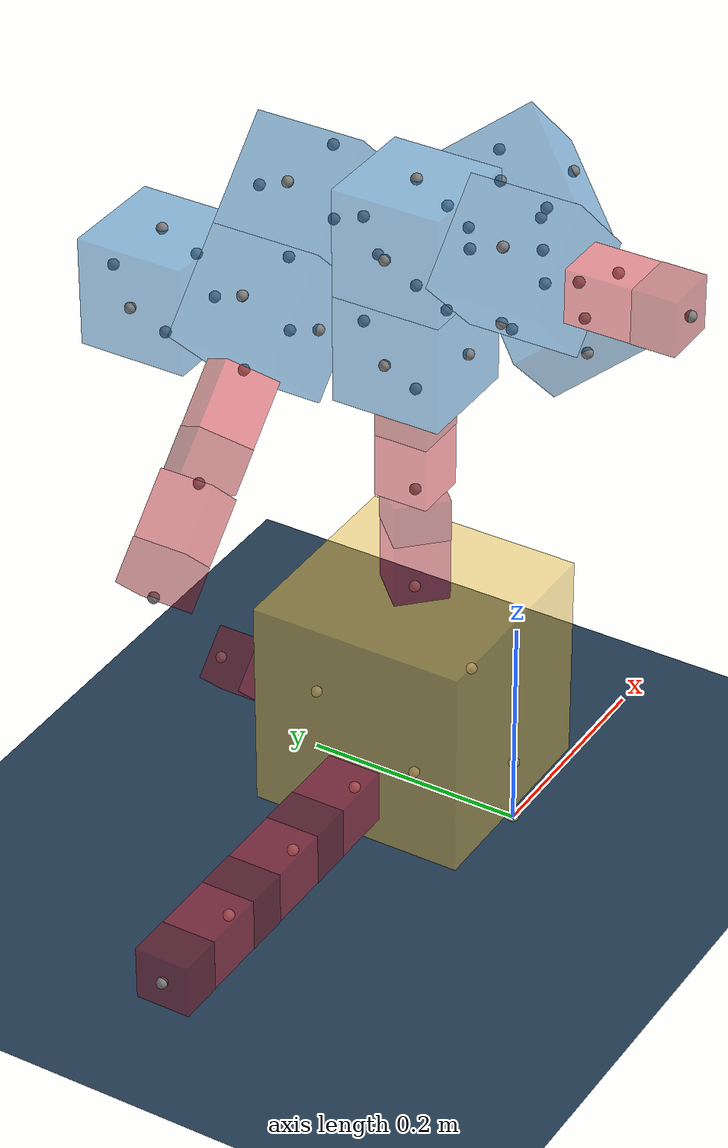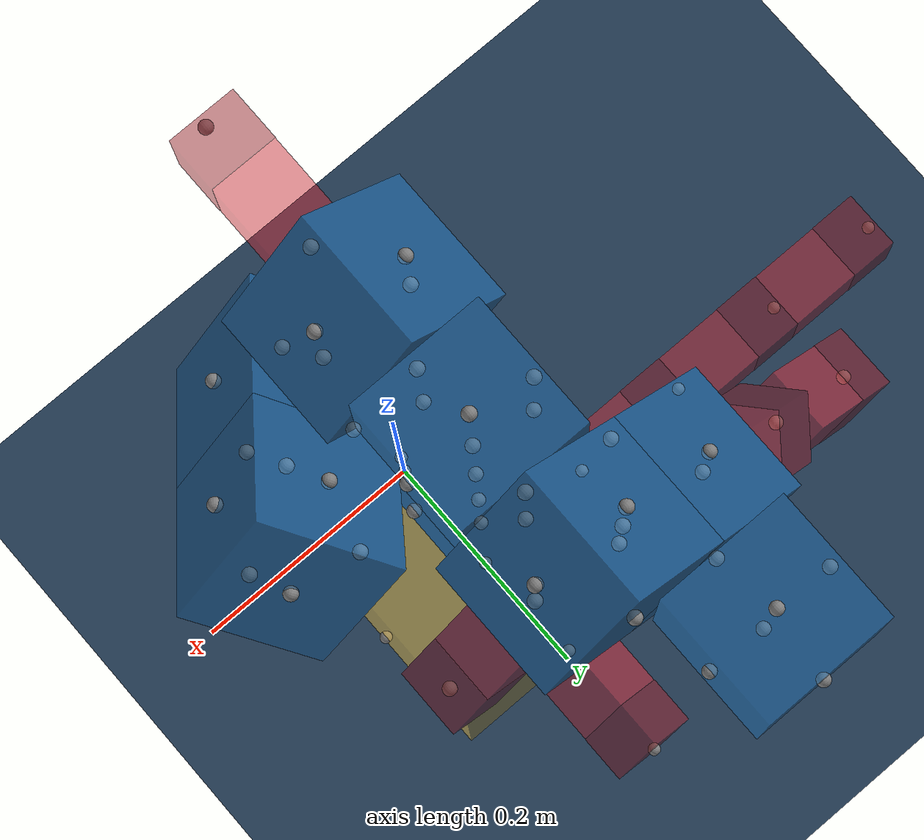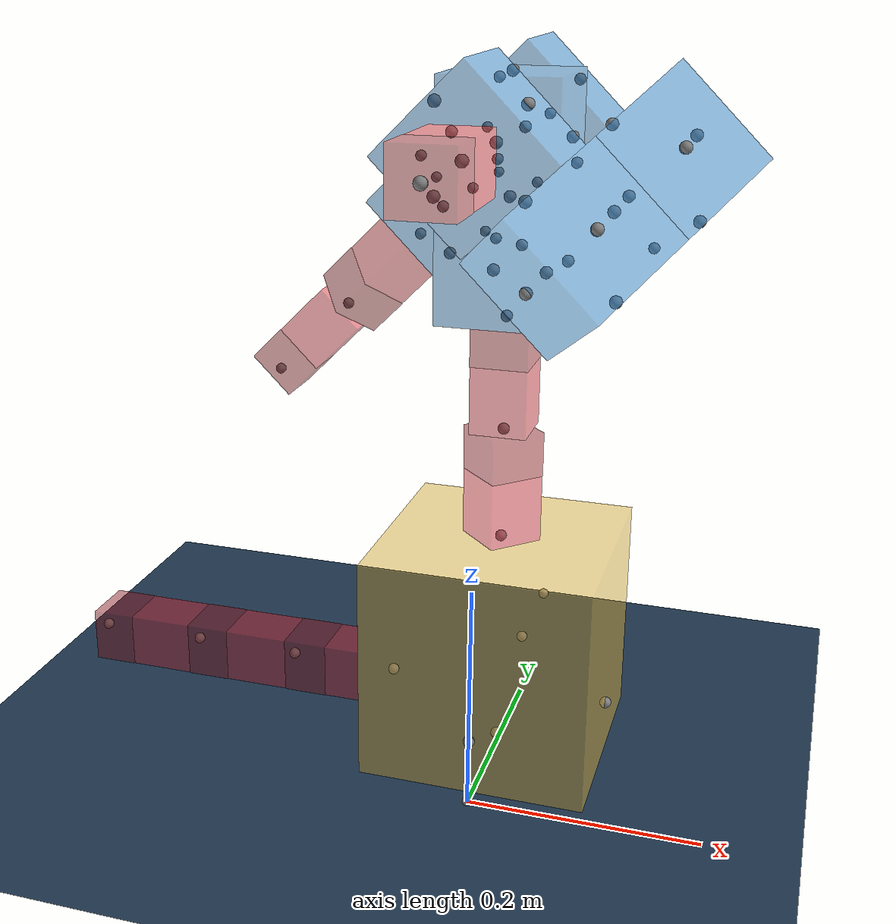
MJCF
<mujoco model="Simple Flat World">
  <compiler angle="radian"/>

  <option integrator="implicitfast"/>

  <visual>
    <global offwidth="1280" offheight="960"/>
  </visual>

  <default>
    <default class="robot1-main">
      <default class="robot1-0-2-3-main">
        <default class="robot1-0-2-3-2-25-0-main"/>
        <default class="robot1-0-2-3-25-10-0-main"/>
      </default>
      <default class="robot1-0-19-0-main"/>
      <default class="robot1-0-18-4-main"/>
      <default class="robot1-18-15-0-main"/>
      <default class="robot1-15-3-0-main"/>
      <default class="robot1-3-7-0-main"/>
      <default class="robot1-7-21-3-main"/>
      <default class="robot1-7-22-2-main"/>
      <default class="robot1-21-26-5-main"/>
      <default class="robot1-21-13-0-main"/>
      <default class="robot1-22-4-5-main"/>
      <default class="robot1-22-24-2-main"/>
      <default class="robot1-26-14-4-main"/>
      <default class="robot1-4-11-3-main"/>
      <default class="robot1-4-23-0-main"/>
      <default class="robot1-23-1-0-main"/>
    </default>
  </default>

  <asset>
    <texture type="2d" colorspace="auto" name="floor" builtin="checker" rgb1="0.1 0.2 0.3" rgb2="0.2 0.3 0.4" width="600" height="600"/>
    <material name="floor" texture="floor" texuniform="true" texrepeat="3 3"/>
  </asset>

  <worldbody>
    <site pos="0 0 0"/>
    <camera name="ortho-cam" pos="-5 0 5" quat="0.653281 0.270598 -0.270598 -0.653281" orthographic="true" fovy="5"/>
    <light name="light" pos="0 0 1" dir="0 0 -1" type="directional" castshadow="false"/>
    <body name="floor">
      <geom name="floor" size="5 5 0.5" type="plane" material="floor"/>
    </body>
    <body name="robot1-world" pos="0 0 0.11">
      <joint type="free"/>
      <body name="robot1-core">
        <geom name="robot1-core" size="0.1 0.1 0.1" pos="0 0.1 0" type="box" mass="1" rgba="0.992157 0.792157 0.25098 0.5"/>
        <site name="robot1-core-front" pos="0 0.2 -0.05"/>
        <site name="robot1-core-back" pos="0 0 -0.05" quat="0 0 0 1"/>
        <site name="robot1-core-left" pos="-0.1 0.1 -0.05" quat="0.707107 0 0 0.707107"/>
        <site name="robot1-core-right" pos="0.1 0.1 -0.05" quat="-0.707107 0 0 0.707107"/>
        <site name="robot1-core-top" pos="0 0.1 0.1" quat="0.707107 0.707107 0 0"/>
        <site name="robot1-core-bottom" pos="0 0.1 -0.1" quat="0 0 -0.707107 0.707107"/>
        <body name="robot1-0-2-3-hinge" pos="-0.1 0.1 -0.05" quat="-0.5 -0.5 0.5 -0.5">
          <body name="robot1-0-2-3-stator" pos="0 0.03 0">
            <geom name="robot1-0-2-3-stator" size="0.02475 0.0297 0.02475" type="box" mass="0.02" rgba="0.87451 0.160784 0.207843 0.5"/>
          </body>
          <body name="robot1-0-2-3-rotor" pos="0 0.08 0">
            <joint name="robot1-0-2-3-servo" pos="0 -0.02 0" axis="0 0 1"/>
            <geom name="robot1-0-2-3-rotor" size="0.025 0.02 0.025" type="box" mass="0.04" rgba="0.627451 0.0941176 0.129412 0.5"/>
            <site name="robot1-0-2-3-hinge-front" pos="0 0.02 0"/>
            <body name="robot1-0-2-3-2-25-0-hinge" pos="0 0.02 0">
              <body name="robot1-0-2-3-2-25-0-stator" pos="0 0.03 0">
                <geom name="robot1-0-2-3-2-25-0-stator" size="0.02475 0.0297 0.02475" type="box" mass="0.02" rgba="0.87451 0.160784 0.207843 0.5"/>
              </body>
              <body name="robot1-0-2-3-2-25-0-rotor" pos="0 0.08 0">
                <joint name="robot1-0-2-3-2-25-0-servo" pos="0 -0.02 0" axis="0 0 1"/>
                <geom name="robot1-0-2-3-2-25-0-rotor" size="0.025 0.02 0.025" type="box" mass="0.04" rgba="0.627451 0.0941176 0.129412 0.5"/>
                <site name="robot1-0-2-3-2-25-0-hinge-front" pos="0 0.02 0"/>
                <body name="robot1-0-2-3-25-10-0-hinge" pos="0 0.02 0">
                  <body name="robot1-0-2-3-25-10-0-stator" pos="0 0.03 0">
                    <geom name="robot1-0-2-3-25-10-0-stator" size="0.02475 0.0297 0.02475" type="box" mass="0.02" rgba="0.87451 0.160784 0.207843 0.5"/>
                  </body>
                  <body name="robot1-0-2-3-25-10-0-rotor" pos="0 0.08 0">
                    <joint name="robot1-0-2-3-25-10-0-servo" pos="0 -0.02 0" axis="0 0 1"/>
                    <geom name="robot1-0-2-3-25-10-0-rotor" size="0.025 0.02 0.025" type="box" mass="0.04" rgba="0.627451 0.0941176 0.129412 0.5"/>
                    <site name="robot1-0-2-3-25-10-0-hinge-front" pos="0 0.02 0"/>
                  </body>
                </body>
              </body>
            </body>
          </body>
        </body>
        <body name="robot1-0-19-0-hinge" pos="0 0.2 -0.05" quat="0.382911 0 0.923785 0">
          <body name="robot1-0-19-0-stator" pos="0 0.03 0">
            <geom name="robot1-0-19-0-stator" size="0.02475 0.0297 0.02475" type="box" mass="0.02" rgba="0.87451 0.160784 0.207843 0.5"/>
          </body>
          <body name="robot1-0-19-0-rotor" pos="0 0.08 0">
            <joint name="robot1-0-19-0-servo" pos="0 -0.02 0" axis="0 0 1"/>
            <geom name="robot1-0-19-0-rotor" size="0.025 0.02 0.025" type="box" mass="0.04" rgba="0.627451 0.0941176 0.129412 0.5"/>
            <site name="robot1-0-19-0-hinge-front" pos="0 0.02 0"/>
          </body>
        </body>
        <body name="robot1-0-18-4-hinge" pos="0 0.1 0.1" quat="0.653215 0.653215 0.270759 0.270759">
          <body name="robot1-0-18-4-stator" pos="0 0.03 0">
            <geom name="robot1-0-18-4-stator" size="0.02475 0.0297 0.02475" type="box" mass="0.02" rgba="0.87451 0.160784 0.207843 0.5"/>
          </body>
          <body name="robot1-0-18-4-rotor" pos="0 0.08 0">
            <joint name="robot1-0-18-4-servo" pos="0 -0.02 0" axis="0 0 1"/>
            <geom name="robot1-0-18-4-rotor" size="0.025 0.02 0.025" type="box" mass="0.04" rgba="0.627451 0.0941176 0.129412 0.5"/>
            <site name="robot1-0-18-4-hinge-front" pos="0 0.02 0"/>
            <body name="robot1-18-15-0-hinge" pos="0 0.02 0" quat="0.923785 0 0.382911 0">
              <body name="robot1-18-15-0-stator" pos="0 0.03 0">
                <geom name="robot1-18-15-0-stator" size="0.02475 0.0297 0.02475" type="box" mass="0.02" rgba="0.87451 0.160784 0.207843 0.5"/>
              </body>
              <body name="robot1-18-15-0-rotor" pos="0 0.08 0">
                <joint name="robot1-18-15-0-servo" pos="0 -0.02 0" axis="0 0 1"/>
                <geom name="robot1-18-15-0-rotor" size="0.025 0.02 0.025" type="box" mass="0.04" rgba="0.627451 0.0941176 0.129412 0.5"/>
                <site name="robot1-18-15-0-hinge-front" pos="0 0.02 0"/>
                <body name="robot1-15-3-0-brick" pos="0 0.02 0">
                  <geom name="robot1-15-3-0-brick" size="0.05 0.05 0.05" pos="0 0.05 0" type="box" mass="0.055" rgba="0.109804 0.466667 0.764706 0.5"/>
                  <site name="robot1-15-3-0-brick-front" pos="0 0.1 0"/>
                  <site name="robot1-15-3-0-brick-left" pos="-0.05 0.05 0" quat="0.707107 0 0 0.707107"/>
                  <site name="robot1-15-3-0-brick-right" pos="0.05 0.05 0" quat="-0.707107 0 0 0.707107"/>
                  <site name="robot1-15-3-0-brick-top" pos="0 0.05 0.05" quat="0.707107 0.707107 0 0"/>
                  <site name="robot1-15-3-0-brick-bottom" pos="0 0.05 -0.05" quat="0 0 -0.707107 0.707107"/>
                  <body name="robot1-3-7-0-brick" pos="0 0.1 0">
                    <geom name="robot1-3-7-0-brick" size="0.05 0.05 0.05" pos="0 0.05 0" type="box" mass="0.055" rgba="0.109804 0.466667 0.764706 0.5"/>
                    <site name="robot1-3-7-0-brick-front" pos="0 0.1 0"/>
                    <site name="robot1-3-7-0-brick-left" pos="-0.05 0.05 0" quat="0.707107 0 0 0.707107"/>
                    <site name="robot1-3-7-0-brick-right" pos="0.05 0.05 0" quat="-0.707107 0 0 0.707107"/>
                    <site name="robot1-3-7-0-brick-top" pos="0 0.05 0.05" quat="0.707107 0.707107 0 0"/>
                    <site name="robot1-3-7-0-brick-bottom" pos="0 0.05 -0.05" quat="0 0 -0.707107 0.707107"/>
                    <body name="robot1-7-21-3-brick" pos="-0.05 0.05 0" quat="0.270759 -0.653215 0.653215 0.270759">
                      <geom name="robot1-7-21-3-brick" size="0.05 0.05 0.05" pos="0 0.05 0" type="box" mass="0.055" rgba="0.109804 0.466667 0.764706 0.5"/>
                      <site name="robot1-7-21-3-brick-front" pos="0 0.1 0"/>
                      <site name="robot1-7-21-3-brick-left" pos="-0.05 0.05 0" quat="0.707107 0 0 0.707107"/>
                      <site name="robot1-7-21-3-brick-right" pos="0.05 0.05 0" quat="-0.707107 0 0 0.707107"/>
                      <site name="robot1-7-21-3-brick-top" pos="0 0.05 0.05" quat="0.707107 0.707107 0 0"/>
                      <site name="robot1-7-21-3-brick-bottom" pos="0 0.05 -0.05" quat="0 0 -0.707107 0.707107"/>
                      <body name="robot1-21-26-5-brick" pos="0 0.05 -0.05" quat="0.270759 -0.270759 -0.653215 0.653215">
                        <geom name="robot1-21-26-5-brick" size="0.05 0.05 0.05" pos="0 0.05 0" type="box" mass="0.055" rgba="0.109804 0.466667 0.764706 0.5"/>
                        <site name="robot1-21-26-5-brick-front" pos="0 0.1 0"/>
                        <site name="robot1-21-26-5-brick-left" pos="-0.05 0.05 0" quat="0.707107 0 0 0.707107"/>
                        <site name="robot1-21-26-5-brick-right" pos="0.05 0.05 0" quat="-0.707107 0 0 0.707107"/>
                        <site name="robot1-21-26-5-brick-top" pos="0 0.05 0.05" quat="0.707107 0.707107 0 0"/>
                        <site name="robot1-21-26-5-brick-bottom" pos="0 0.05 -0.05" quat="0 0 -0.707107 0.707107"/>
                        <body name="robot1-26-14-4-brick" pos="0 0.05 0.05" quat="0.5 0.5 0.5 0.5">
                          <geom name="robot1-26-14-4-brick" size="0.05 0.05 0.05" pos="0 0.05 0" type="box" mass="0.055" rgba="0.109804 0.466667 0.764706 0.5"/>
                          <site name="robot1-26-14-4-brick-front" pos="0 0.1 0"/>
                          <site name="robot1-26-14-4-brick-left" pos="-0.05 0.05 0" quat="0.707107 0 0 0.707107"/>
                          <site name="robot1-26-14-4-brick-right" pos="0.05 0.05 0" quat="-0.707107 0 0 0.707107"/>
                          <site name="robot1-26-14-4-brick-top" pos="0 0.05 0.05" quat="0.707107 0.707107 0 0"/>
                          <site name="robot1-26-14-4-brick-bottom" pos="0 0.05 -0.05" quat="0 0 -0.707107 0.707107"/>
                        </body>
                      </body>
                      <body name="robot1-21-13-0-hinge" pos="0 0.1 0" quat="0.923785 0 0.382911 0">
                        <body name="robot1-21-13-0-stator" pos="0 0.03 0">
                          <geom name="robot1-21-13-0-stator" size="0.02475 0.0297 0.02475" type="box" mass="0.02" rgba="0.87451 0.160784 0.207843 0.5"/>
                        </body>
                        <body name="robot1-21-13-0-rotor" pos="0 0.08 0">
                          <joint name="robot1-21-13-0-servo" pos="0 -0.02 0" axis="0 0 1"/>
                          <geom name="robot1-21-13-0-rotor" size="0.025 0.02 0.025" type="box" mass="0.04" rgba="0.627451 0.0941176 0.129412 0.5"/>
                          <site name="robot1-21-13-0-hinge-front" pos="0 0.02 0"/>
                        </body>
                      </body>
                    </body>
                    <body name="robot1-7-22-2-brick" pos="0.05 0.05 0" quat="0.653215 -0.270759 -0.270759 -0.653215">
                      <geom name="robot1-7-22-2-brick" size="0.05 0.05 0.05" pos="0 0.05 0" type="box" mass="0.055" rgba="0.109804 0.466667 0.764706 0.5"/>
                      <site name="robot1-7-22-2-brick-front" pos="0 0.1 0"/>
                      <site name="robot1-7-22-2-brick-left" pos="-0.05 0.05 0" quat="0.707107 0 0 0.707107"/>
                      <site name="robot1-7-22-2-brick-right" pos="0.05 0.05 0" quat="-0.707107 0 0 0.707107"/>
                      <site name="robot1-7-22-2-brick-top" pos="0 0.05 0.05" quat="0.707107 0.707107 0 0"/>
                      <site name="robot1-7-22-2-brick-bottom" pos="0 0.05 -0.05" quat="0 0 -0.707107 0.707107"/>
                      <body name="robot1-22-4-5-brick" pos="0 0.05 -0.05" quat="0.5 -0.5 0.5 -0.5">
                        <geom name="robot1-22-4-5-brick" size="0.05 0.05 0.05" pos="0 0.05 0" type="box" mass="0.055" rgba="0.109804 0.466667 0.764706 0.5"/>
                        <site name="robot1-22-4-5-brick-front" pos="0 0.1 0"/>
                        <site name="robot1-22-4-5-brick-left" pos="-0.05 0.05 0" quat="0.707107 0 0 0.707107"/>
                        <site name="robot1-22-4-5-brick-right" pos="0.05 0.05 0" quat="-0.707107 0 0 0.707107"/>
                        <site name="robot1-22-4-5-brick-top" pos="0 0.05 0.05" quat="0.707107 0.707107 0 0"/>
                        <site name="robot1-22-4-5-brick-bottom" pos="0 0.05 -0.05" quat="0 0 -0.707107 0.707107"/>
                        <body name="robot1-4-11-3-brick" pos="-0.05 0.05 0" quat="-0.270759 -0.653215 0.653215 -0.270759">
                          <geom name="robot1-4-11-3-brick" size="0.05 0.05 0.05" pos="0 0.05 0" type="box" mass="0.055" rgba="0.109804 0.466667 0.764706 0.5"/>
                          <site name="robot1-4-11-3-brick-front" pos="0 0.1 0"/>
                          <site name="robot1-4-11-3-brick-left" pos="-0.05 0.05 0" quat="0.707107 0 0 0.707107"/>
                          <site name="robot1-4-11-3-brick-right" pos="0.05 0.05 0" quat="-0.707107 0 0 0.707107"/>
                          <site name="robot1-4-11-3-brick-top" pos="0 0.05 0.05" quat="0.707107 0.707107 0 0"/>
                          <site name="robot1-4-11-3-brick-bottom" pos="0 0.05 -0.05" quat="0 0 -0.707107 0.707107"/>
                        </body>
                        <body name="robot1-4-23-0-hinge" pos="0 0.1 0" quat="-0.923785 0 0.382911 0">
                          <body name="robot1-4-23-0-stator" pos="0 0.03 0">
                            <geom name="robot1-4-23-0-stator" size="0.02475 0.0297 0.02475" type="box" mass="0.02" rgba="0.87451 0.160784 0.207843 0.5"/>
                          </body>
                          <body name="robot1-4-23-0-rotor" pos="0 0.08 0">
                            <joint name="robot1-4-23-0-servo" pos="0 -0.02 0" axis="0 0 1"/>
                            <geom name="robot1-4-23-0-rotor" size="0.025 0.02 0.025" type="box" mass="0.04" rgba="0.627451 0.0941176 0.129412 0.5"/>
                            <site name="robot1-4-23-0-hinge-front" pos="0 0.02 0"/>
                            <body name="robot1-23-1-0-hinge" pos="0 0.02 0" quat="0.382911 0 0.923785 0">
                              <body name="robot1-23-1-0-stator" pos="0 0.03 0">
                                <geom name="robot1-23-1-0-stator" size="0.02475 0.0297 0.02475" type="box" mass="0.02" rgba="0.87451 0.160784 0.207843 0.5"/>
                              </body>
                              <body name="robot1-23-1-0-rotor" pos="0 0.08 0">
                                <joint name="robot1-23-1-0-servo" pos="0 -0.02 0" axis="0 0 1"/>
                                <geom name="robot1-23-1-0-rotor" size="0.025 0.02 0.025" type="box" mass="0.04" rgba="0.627451 0.0941176 0.129412 0.5"/>
                                <site name="robot1-23-1-0-hinge-front" pos="0 0.02 0"/>
                              </body>
                            </body>
                          </body>
                        </body>
                      </body>
                      <body name="robot1-22-24-2-hinge" pos="0.05 0.05 0" quat="0.5 -0.5 -0.5 -0.5">
                        <body name="robot1-22-24-2-stator" pos="0 0.03 0">
                          <geom name="robot1-22-24-2-stator" size="0.02475 0.0297 0.02475" type="box" mass="0.02" rgba="0.87451 0.160784 0.207843 0.5"/>
                        </body>
                        <body name="robot1-22-24-2-rotor" pos="0 0.08 0">
                          <joint name="robot1-22-24-2-servo" pos="0 -0.02 0" axis="0 0 1"/>
                          <geom name="robot1-22-24-2-rotor" size="0.025 0.02 0.025" type="box" mass="0.04" rgba="0.627451 0.0941176 0.129412 0.5"/>
                          <site name="robot1-22-24-2-hinge-front" pos="0 0.02 0"/>
                        </body>
                      </body>
                    </body>
                  </body>
                </body>
              </body>
            </body>
          </body>
        </body>
      </body>
    </body>
  </worldbody>

  <contact>
    <exclude body1="robot1-0-2-3-stator" body2="robot1-0-2-3-rotor"/>
    <exclude body1="robot1-0-2-3-2-25-0-stator" body2="robot1-0-2-3-2-25-0-rotor"/>
    <exclude body1="robot1-0-2-3-25-10-0-stator" body2="robot1-0-2-3-25-10-0-rotor"/>
    <exclude body1="robot1-0-19-0-stator" body2="robot1-0-19-0-rotor"/>
    <exclude body1="robot1-0-18-4-stator" body2="robot1-0-18-4-rotor"/>
    <exclude body1="robot1-18-15-0-stator" body2="robot1-18-15-0-rotor"/>
    <exclude body1="robot1-21-13-0-stator" body2="robot1-21-13-0-rotor"/>
    <exclude body1="robot1-4-23-0-stator" body2="robot1-4-23-0-rotor"/>
    <exclude body1="robot1-23-1-0-stator" body2="robot1-23-1-0-rotor"/>
    <exclude body1="robot1-22-24-2-stator" body2="robot1-22-24-2-rotor"/>
  </contact>

  <actuator>
    <general name="robot1-0-2-3-servo" joint="robot1-0-2-3-servo" ctrlrange="-1.5708 1.5708" dynprm="0 0 0 0 0 0 0 0 0 0" biastype="affine" biasprm="0 -1 -1"/>
    <general name="robot1-0-2-3-2-25-0-servo" joint="robot1-0-2-3-2-25-0-servo" ctrlrange="-1.5708 1.5708" dynprm="0 0 0 0 0 0 0 0 0 0" biastype="affine" biasprm="0 -1 -1"/>
    <general name="robot1-0-2-3-25-10-0-servo" joint="robot1-0-2-3-25-10-0-servo" ctrlrange="-1.5708 1.5708" dynprm="0 0 0 0 0 0 0 0 0 0" biastype="affine" biasprm="0 -1 -1"/>
    <general name="robot1-0-19-0-servo" joint="robot1-0-19-0-servo" ctrlrange="-1.5708 1.5708" dynprm="0 0 0 0 0 0 0 0 0 0" biastype="affine" biasprm="0 -1 -1"/>
    <general name="robot1-0-18-4-servo" joint="robot1-0-18-4-servo" ctrlrange="-1.5708 1.5708" dynprm="0 0 0 0 0 0 0 0 0 0" biastype="affine" biasprm="0 -1 -1"/>
    <general name="robot1-18-15-0-servo" joint="robot1-18-15-0-servo" ctrlrange="-1.5708 1.5708" dynprm="0 0 0 0 0 0 0 0 0 0" biastype="affine" biasprm="0 -1 -1"/>
    <general name="robot1-21-13-0-servo" joint="robot1-21-13-0-servo" ctrlrange="-1.5708 1.5708" dynprm="0 0 0 0 0 0 0 0 0 0" biastype="affine" biasprm="0 -1 -1"/>
    <general name="robot1-22-24-2-servo" joint="robot1-22-24-2-servo" ctrlrange="-1.5708 1.5708" dynprm="0 0 0 0 0 0 0 0 0 0" biastype="affine" biasprm="0 -1 -1"/>
    <general name="robot1-4-23-0-servo" joint="robot1-4-23-0-servo" ctrlrange="-1.5708 1.5708" dynprm="0 0 0 0 0 0 0 0 0 0" biastype="affine" biasprm="0 -1 -1"/>
    <general name="robot1-23-1-0-servo" joint="robot1-23-1-0-servo" ctrlrange="-1.5708 1.5708" dynprm="0 0 0 0 0 0 0 0 0 0" biastype="affine" biasprm="0 -1 -1"/>
  </actuator>
</mujoco>
